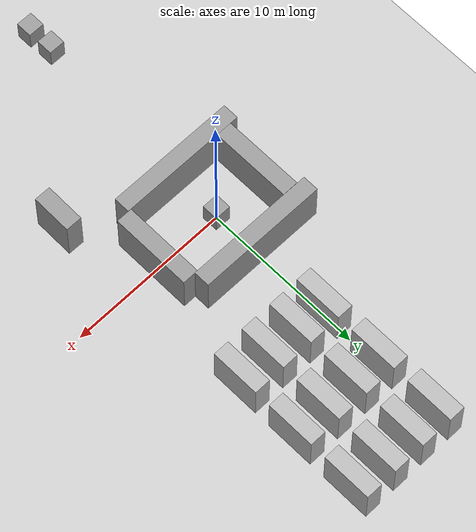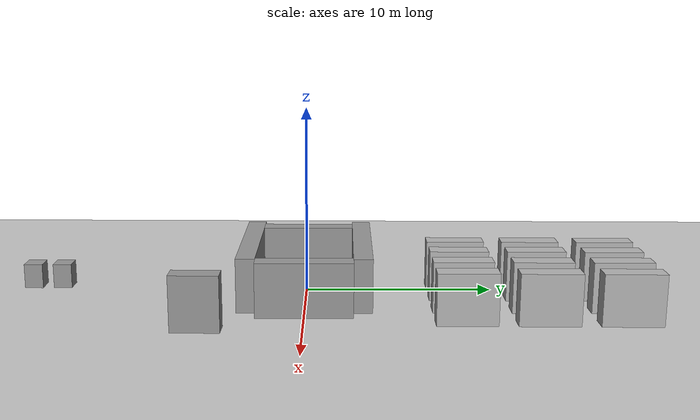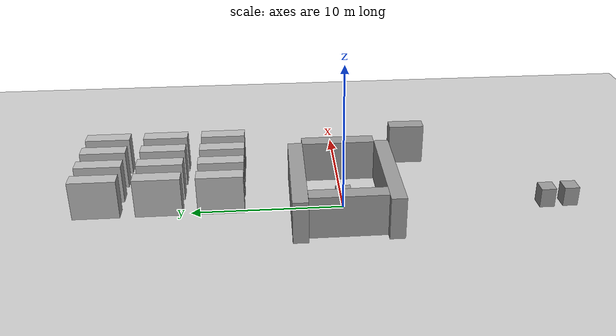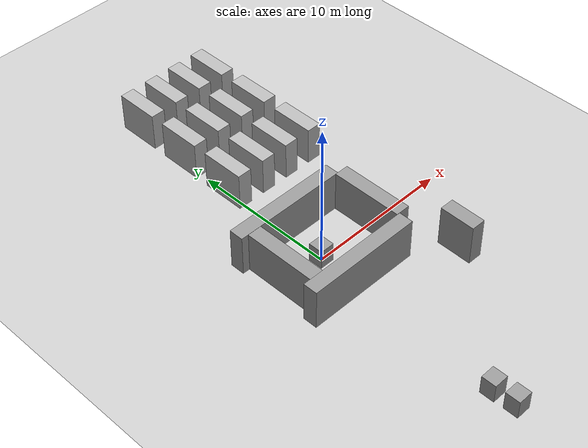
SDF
<sdf version="1.7">
 <world name="default">
  <light name="sun" type="directional">
   <pose>0 0 10 0 -0 0</pose>
   <diffuse>0.8 0.8 0.8 1</diffuse>
   <specular>0.2 0.2 0.2 1</specular>
   <attenuation>
    <range>1000</range>
    <constant>0.9</constant>
    <linear>0.01</linear>
    <quadratic>0.001</quadratic>
   </attenuation>
   <direction>-0.5 0.1 -0.9</direction>
   <spot><inner_angle>0</inner_angle><outer_angle>0</outer_angle><falloff>0</falloff></spot>
  </light>
  <model name="ground_plane">
   <static>1</static>
   <link name="link">
    <collision name="collision">
     <geometry><plane><normal>0 0 1</normal><size>100 100</size></plane></geometry>
     <surface>
      <contact><collide_bitmask>65535</collide_bitmask></contact>
      <friction><ode><mu>100</mu><mu2>50</mu2></ode></friction>
     </surface>
    </collision>
    <visual name="visual">
     <cast_shadows>0</cast_shadows>
     <geometry><plane><normal>0 0 1</normal><size>100 100</size></plane></geometry>
     <material>
      <script><uri>file://media/materials/scripts/gazebo.material</uri><name>Gazebo/Grey</name></script>
     </material>
    </visual>
   </link>
  </model>
  <gravity>0 0 -9.8</gravity>
  <magnetic_field>6e-06 2.3e-05 -4.2e-05</magnetic_field>
  <atmosphere type="adiabatic"/>
  <physics type="ode">
   <max_step_size>0.001</max_step_size>
   <real_time_factor>1</real_time_factor>
   <real_time_update_rate>1000</real_time_update_rate>
  </physics>
  <scene><ambient>0.4 0.4 0.4 1</ambient><background>0.7 0.7 0.7 1</background><shadows>1</shadows></scene>
  <spherical_coordinates>
   <surface_model>EARTH_WGS84</surface_model>
   <latitude_deg>0</latitude_deg>
   <longitude_deg>0</longitude_deg>
   <elevation>0</elevation>
   <heading_deg>0</heading_deg>
  </spherical_coordinates>
  <light name="user_point_light_0" type="point">
   <pose>-0.552343 0.007514 1 0 -0 0</pose>
   <diffuse>0.5 0.5 0.5 1</diffuse>
   <specular>0.1 0.1 0.1 1</specular>
   <attenuation>
    <range>20</range>
    <constant>0.5</constant>
    <linear>0.01</linear>
    <quadratic>0.001</quadratic>
   </attenuation>
   <cast_shadows>0</cast_shadows>
   <direction>0 0 -1</direction>
   <spot><inner_angle>0</inner_angle><outer_angle>0</outer_angle><falloff>0</falloff></spot>
  </light>
  <model name="black_box">
   <link name="link">
    <inertial>
     <mass>1</mass>
     <inertia>
      <ixx>0.166667</ixx>
      <ixy>0</ixy>
      <ixz>0</ixz>
      <iyy>0.166667</iyy>
      <iyz>0</iyz>
      <izz>0.166667</izz>
     </inertia>
    </inertial>
    <visual name="visual">
     <geometry><box><size>1 2.47075 3.03</size></box></geometry>
     <material>
      <script><name>Gazebo/Grey</name><uri>file://media/materials/scripts/gazebo.material</uri></script>
      <shader type="pixel"><normal_map>__default__</normal_map></shader>
      <ambient>0 0 0 1</ambient>
      <diffuse>0 0 0 1</diffuse>
      <specular>0 0 0 1</specular>
      <emissive>0 0 0 1</emissive>
     </material>
    </visual>
    <collision name="collision">
     <geometry><box><size>1 2.47691 2.64879</size></box></geometry>
     <surface>
      <friction>
       <ode><mu>1</mu><mu2>1</mu2><fdir1>0 0 0</fdir1><slip1>0</slip1><slip2>0</slip2></ode>
       <torsional>
        <coefficient>1</coefficient>
        <patch_radius>0</patch_radius>
        <surface_radius>0</surface_radius>
        <use_patch_radius>1</use_patch_radius>
        <ode><slip>0</slip></ode>
       </torsional>
      </friction>
      <bounce><restitution_coefficient>0</restitution_coefficient><threshold>1e+06</threshold></bounce>
      <contact>
       <collide_without_contact>0</collide_without_contact>
       <collide_without_contact_bitmask>1</collide_without_contact_bitmask>
       <collide_bitmask>1</collide_bitmask>
       <ode>
        <soft_cfm>0</soft_cfm>
        <soft_erp>0.2</soft_erp>
        <kp>1e+13</kp>
        <kd>1</kd>
        <max_vel>0.01</max_vel>
        <min_depth>0</min_depth>
       </ode>
       <bullet>
        <split_impulse>1</split_impulse>
        <split_impulse_penetration_threshold>-0.01</split_impulse_penetration_threshold>
        <soft_cfm>0</soft_cfm>
        <soft_erp>0.2</soft_erp>
        <kp>1e+13</kp>
        <kd>1</kd>
       </bullet>
      </contact>
     </surface>
    </collision>
   </link>
   <static>0</static>
   <pose>6.51067 -5.20766 1.32439 0 -0 -0.013022</pose>
  </model>
  <model name="image1">
   <link name="link_1">
    <inertial>
     <mass>1</mass>
     <inertia>
      <ixx>0.166667</ixx>
      <ixy>0</ixy>
      <ixz>0</ixz>
      <iyy>0.166667</iyy>
      <iyz>0</iyz>
      <izz>0.166667</izz>
     </inertia>
    </inertial>
    <visual name="visual">
     <geometry><box><size>1 3.03759 2.64879</size></box></geometry>
     <material>
      <lighting>1</lighting>
      <script><uri>model://image1/materials/scripts/pattern.material</uri><name>image1/pattern</name></script>
     </material>
    </visual>
    <collision name="collision">
     <geometry><box><size>1 3.03 3.03</size></box></geometry>
     <surface>
      <friction>
       <ode><mu>1</mu><mu2>1</mu2><fdir1>0 0 0</fdir1><slip1>0</slip1><slip2>0</slip2></ode>
       <torsional>
        <coefficient>1</coefficient>
        <patch_radius>0</patch_radius>
        <surface_radius>0</surface_radius>
        <use_patch_radius>1</use_patch_radius>
        <ode><slip>0</slip></ode>
       </torsional>
      </friction>
      <bounce><restitution_coefficient>0</restitution_coefficient><threshold>1e+06</threshold></bounce>
      <contact>
       <collide_without_contact>0</collide_without_contact>
       <collide_without_contact_bitmask>1</collide_without_contact_bitmask>
       <collide_bitmask>1</collide_bitmask>
       <ode>
        <soft_cfm>0</soft_cfm>
        <soft_erp>0.2</soft_erp>
        <kp>1e+13</kp>
        <kd>1</kd>
        <max_vel>0.01</max_vel>
        <min_depth>0</min_depth>
       </ode>
       <bullet>
        <split_impulse>1</split_impulse>
        <split_impulse_penetration_threshold>-0.01</split_impulse_penetration_threshold>
        <soft_cfm>0</soft_cfm>
        <soft_erp>0.2</soft_erp>
        <kp>1e+13</kp>
        <kd>1</kd>
       </bullet>
      </contact>
     </surface>
    </collision>
   </link>
   <static>0</static>
   <pose>-6.8e-05 7.99998 1.515 0 -0 5.9e-05</pose>
  </model>
  <model name="image10">
   <link name="link_1">
    <inertial>
     <mass>1</mass>
     <inertia>
      <ixx>0.166667</ixx>
      <ixy>0</ixy>
      <ixz>0</ixz>
      <iyy>0.166667</iyy>
      <iyz>0</iyz>
      <izz>0.166667</izz>
     </inertia>
    </inertial>
    <visual name="visual">
     <geometry><box><size>1 3.03759 2.64879</size></box></geometry>
     <material>
      <lighting>1</lighting>
      <script><uri>model://image10/materials/scripts/pattern.material</uri><name>image10/pattern</name></script>
     </material>
    </visual>
    <collision name="collision">
     <geometry><box><size>1 3.03 3.03</size></box></geometry>
     <surface>
      <friction>
       <ode><mu>1</mu><mu2>1</mu2><fdir1>0 0 0</fdir1><slip1>0</slip1><slip2>0</slip2></ode>
       <torsional>
        <coefficient>1</coefficient>
        <patch_radius>0</patch_radius>
        <surface_radius>0</surface_radius>
        <use_patch_radius>1</use_patch_radius>
        <ode><slip>0</slip></ode>
       </torsional>
      </friction>
      <bounce><restitution_coefficient>0</restitution_coefficient><threshold>1e+06</threshold></bounce>
      <contact>
       <collide_without_contact>0</collide_without_contact>
       <collide_without_contact_bitmask>1</collide_without_contact_bitmask>
       <collide_bitmask>1</collide_bitmask>
       <ode>
        <soft_cfm>0</soft_cfm>
        <soft_erp>0.2</soft_erp>
        <kp>1e+13</kp>
        <kd>1</kd>
        <max_vel>0.01</max_vel>
        <min_depth>0</min_depth>
       </ode>
       <bullet>
        <split_impulse>1</split_impulse>
        <split_impulse_penetration_threshold>-0.01</split_impulse_penetration_threshold>
        <soft_cfm>0</soft_cfm>
        <soft_erp>0.2</soft_erp>
        <kp>1e+13</kp>
        <kd>1</kd>
       </bullet>
      </contact>
     </surface>
    </collision>
   </link>
   <static>0</static>
   <pose>1.99993 16 1.515 0 -0 5.9e-05</pose>
  </model>
  <model name="image11">
   <link name="link_1">
    <inertial>
     <mass>1</mass>
     <inertia>
      <ixx>0.166667</ixx>
      <ixy>0</ixy>
      <ixz>0</ixz>
      <iyy>0.166667</iyy>
      <iyz>0</iyz>
      <izz>0.166667</izz>
     </inertia>
    </inertial>
    <visual name="visual">
     <geometry><box><size>1 3.03759 2.64879</size></box></geometry>
     <material>
      <lighting>1</lighting>
      <script><uri>model://image11/materials/scripts/pattern.material</uri><name>image11/pattern</name></script>
     </material>
    </visual>
    <collision name="collision">
     <geometry><box><size>1 3.03 3.03</size></box></geometry>
     <surface>
      <friction>
       <ode><mu>1</mu><mu2>1</mu2><fdir1>0 0 0</fdir1><slip1>0</slip1><slip2>0</slip2></ode>
       <torsional>
        <coefficient>1</coefficient>
        <patch_radius>0</patch_radius>
        <surface_radius>0</surface_radius>
        <use_patch_radius>1</use_patch_radius>
        <ode><slip>0</slip></ode>
       </torsional>
      </friction>
      <bounce><restitution_coefficient>0</restitution_coefficient><threshold>1e+06</threshold></bounce>
      <contact>
       <collide_without_contact>0</collide_without_contact>
       <collide_without_contact_bitmask>1</collide_without_contact_bitmask>
       <collide_bitmask>1</collide_bitmask>
       <ode>
        <soft_cfm>0</soft_cfm>
        <soft_erp>0.2</soft_erp>
        <kp>1e+13</kp>
        <kd>1</kd>
        <max_vel>0.01</max_vel>
        <min_depth>0</min_depth>
       </ode>
       <bullet>
        <split_impulse>1</split_impulse>
        <split_impulse_penetration_threshold>-0.01</split_impulse_penetration_threshold>
        <soft_cfm>0</soft_cfm>
        <soft_erp>0.2</soft_erp>
        <kp>1e+13</kp>
        <kd>1</kd>
       </bullet>
      </contact>
     </surface>
    </collision>
   </link>
   <static>0</static>
   <pose>3.99993 16 1.515 0 -0 5.9e-05</pose>
  </model>
  <model name="image12">
   <link name="link_1">
    <inertial>
     <mass>1</mass>
     <inertia>
      <ixx>0.166667</ixx>
      <ixy>0</ixy>
      <ixz>0</ixz>
      <iyy>0.166667</iyy>
      <iyz>0</iyz>
      <izz>0.166667</izz>
     </inertia>
    </inertial>
    <visual name="visual">
     <geometry><box><size>1 3.03759 2.64879</size></box></geometry>
     <material>
      <lighting>1</lighting>
      <script><uri>model://image12/materials/scripts/pattern.material</uri><name>image12/pattern</name></script>
     </material>
    </visual>
    <collision name="collision">
     <geometry><box><size>1 3.03 3.03</size></box></geometry>
     <surface>
      <friction>
       <ode><mu>1</mu><mu2>1</mu2><fdir1>0 0 0</fdir1><slip1>0</slip1><slip2>0</slip2></ode>
       <torsional>
        <coefficient>1</coefficient>
        <patch_radius>0</patch_radius>
        <surface_radius>0</surface_radius>
        <use_patch_radius>1</use_patch_radius>
        <ode><slip>0</slip></ode>
       </torsional>
      </friction>
      <bounce><restitution_coefficient>0</restitution_coefficient><threshold>1e+06</threshold></bounce>
      <contact>
       <collide_without_contact>0</collide_without_contact>
       <collide_without_contact_bitmask>1</collide_without_contact_bitmask>
       <collide_bitmask>1</collide_bitmask>
       <ode>
        <soft_cfm>0</soft_cfm>
        <soft_erp>0.2</soft_erp>
        <kp>1e+13</kp>
        <kd>1</kd>
        <max_vel>0.01</max_vel>
        <min_depth>0</min_depth>
       </ode>
       <bullet>
        <split_impulse>1</split_impulse>
        <split_impulse_penetration_threshold>-0.01</split_impulse_penetration_threshold>
        <soft_cfm>0</soft_cfm>
        <soft_erp>0.2</soft_erp>
        <kp>1e+13</kp>
        <kd>1</kd>
       </bullet>
      </contact>
     </surface>
    </collision>
   </link>
   <static>0</static>
   <pose>5.99993 16 1.515 0 -0 5.9e-05</pose>
  </model>
  <model name="image9">
   <link name="link_1">
    <inertial>
     <mass>1</mass>
     <inertia>
      <ixx>0.166667</ixx>
      <ixy>0</ixy>
      <ixz>0</ixz>
      <iyy>0.166667</iyy>
      <iyz>0</iyz>
      <izz>0.166667</izz>
     </inertia>
    </inertial>
    <visual name="visual">
     <geometry><box><size>1 3.03759 2.64879</size></box></geometry>
     <material>
      <lighting>1</lighting>
      <script><uri>model://image9/materials/scripts/pattern.material</uri><name>image9/pattern</name></script>
     </material>
    </visual>
    <collision name="collision">
     <geometry><box><size>1 3.03 3.03</size></box></geometry>
     <surface>
      <friction>
       <ode><mu>1</mu><mu2>1</mu2><fdir1>0 0 0</fdir1><slip1>0</slip1><slip2>0</slip2></ode>
       <torsional>
        <coefficient>1</coefficient>
        <patch_radius>0</patch_radius>
        <surface_radius>0</surface_radius>
        <use_patch_radius>1</use_patch_radius>
        <ode><slip>0</slip></ode>
       </torsional>
      </friction>
      <bounce><restitution_coefficient>0</restitution_coefficient><threshold>1e+06</threshold></bounce>
      <contact>
       <collide_without_contact>0</collide_without_contact>
       <collide_without_contact_bitmask>1</collide_without_contact_bitmask>
       <collide_bitmask>1</collide_bitmask>
       <ode>
        <soft_cfm>0</soft_cfm>
        <soft_erp>0.2</soft_erp>
        <kp>1e+13</kp>
        <kd>1</kd>
        <max_vel>0.01</max_vel>
        <min_depth>0</min_depth>
       </ode>
       <bullet>
        <split_impulse>1</split_impulse>
        <split_impulse_penetration_threshold>-0.01</split_impulse_penetration_threshold>
        <soft_cfm>0</soft_cfm>
        <soft_erp>0.2</soft_erp>
        <kp>1e+13</kp>
        <kd>1</kd>
       </bullet>
      </contact>
     </surface>
    </collision>
   </link>
   <static>0</static>
   <pose>-6.8e-05 16 1.515 0 -0 5.9e-05</pose>
  </model>
  <model name="image2">
   <link name="link_1">
    <inertial>
     <mass>1</mass>
     <inertia>
      <ixx>0.166667</ixx>
      <ixy>0</ixy>
      <ixz>0</ixz>
      <iyy>0.166667</iyy>
      <iyz>0</iyz>
      <izz>0.166667</izz>
     </inertia>
    </inertial>
    <visual name="visual">
     <geometry><box><size>1 3.03759 2.64879</size></box></geometry>
     <material>
      <lighting>1</lighting>
      <script><uri>model://image2/materials/scripts/pattern.material</uri><name>image2/pattern</name></script>
     </material>
    </visual>
    <collision name="collision">
     <geometry><box><size>1 3.03 3.03</size></box></geometry>
     <surface>
      <friction>
       <ode><mu>1</mu><mu2>1</mu2><fdir1>0 0 0</fdir1><slip1>0</slip1><slip2>0</slip2></ode>
       <torsional>
        <coefficient>1</coefficient>
        <patch_radius>0</patch_radius>
        <surface_radius>0</surface_radius>
        <use_patch_radius>1</use_patch_radius>
        <ode><slip>0</slip></ode>
       </torsional>
      </friction>
      <bounce><restitution_coefficient>0</restitution_coefficient><threshold>1e+06</threshold></bounce>
      <contact>
       <collide_without_contact>0</collide_without_contact>
       <collide_without_contact_bitmask>1</collide_without_contact_bitmask>
       <collide_bitmask>1</collide_bitmask>
       <ode>
        <soft_cfm>0</soft_cfm>
        <soft_erp>0.2</soft_erp>
        <kp>1e+13</kp>
        <kd>1</kd>
        <max_vel>0.01</max_vel>
        <min_depth>0</min_depth>
       </ode>
       <bullet>
        <split_impulse>1</split_impulse>
        <split_impulse_penetration_threshold>-0.01</split_impulse_penetration_threshold>
        <soft_cfm>0</soft_cfm>
        <soft_erp>0.2</soft_erp>
        <kp>1e+13</kp>
        <kd>1</kd>
       </bullet>
      </contact>
     </surface>
    </collision>
   </link>
   <static>0</static>
   <pose>1.99993 7.99998 1.515 0 -0 5.9e-05</pose>
  </model>
  <model name="image3">
   <link name="link_1">
    <inertial>
     <mass>1</mass>
     <inertia>
      <ixx>0.166667</ixx>
      <ixy>0</ixy>
      <ixz>0</ixz>
      <iyy>0.166667</iyy>
      <iyz>0</iyz>
      <izz>0.166667</izz>
     </inertia>
    </inertial>
    <visual name="visual">
     <geometry><box><size>1 3.03759 2.64879</size></box></geometry>
     <material>
      <lighting>1</lighting>
      <script><uri>model://image3/materials/scripts/pattern.material</uri><name>image3/pattern</name></script>
     </material>
    </visual>
    <collision name="collision">
     <geometry><box><size>1 3.03 3.03</size></box></geometry>
     <surface>
      <friction>
       <ode><mu>1</mu><mu2>1</mu2><fdir1>0 0 0</fdir1><slip1>0</slip1><slip2>0</slip2></ode>
       <torsional>
        <coefficient>1</coefficient>
        <patch_radius>0</patch_radius>
        <surface_radius>0</surface_radius>
        <use_patch_radius>1</use_patch_radius>
        <ode><slip>0</slip></ode>
       </torsional>
      </friction>
      <bounce><restitution_coefficient>0</restitution_coefficient><threshold>1e+06</threshold></bounce>
      <contact>
       <collide_without_contact>0</collide_without_contact>
       <collide_without_contact_bitmask>1</collide_without_contact_bitmask>
       <collide_bitmask>1</collide_bitmask>
       <ode>
        <soft_cfm>0</soft_cfm>
        <soft_erp>0.2</soft_erp>
        <kp>1e+13</kp>
        <kd>1</kd>
        <max_vel>0.01</max_vel>
        <min_depth>0</min_depth>
       </ode>
       <bullet>
        <split_impulse>1</split_impulse>
        <split_impulse_penetration_threshold>-0.01</split_impulse_penetration_threshold>
        <soft_cfm>0</soft_cfm>
        <soft_erp>0.2</soft_erp>
        <kp>1e+13</kp>
        <kd>1</kd>
       </bullet>
      </contact>
     </surface>
    </collision>
   </link>
   <static>0</static>
   <pose>3.99993 7.99998 1.515 0 -0 5.9e-05</pose>
  </model>
  <model name="image4">
   <link name="link_1">
    <inertial>
     <mass>1</mass>
     <inertia>
      <ixx>0.166667</ixx>
      <ixy>0</ixy>
      <ixz>0</ixz>
      <iyy>0.166667</iyy>
      <iyz>0</iyz>
      <izz>0.166667</izz>
     </inertia>
    </inertial>
    <visual name="visual">
     <geometry><box><size>1 3.03759 2.64879</size></box></geometry>
     <material>
      <lighting>1</lighting>
      <script><uri>model://image4/materials/scripts/pattern.material</uri><name>image4/pattern</name></script>
     </material>
    </visual>
    <collision name="collision">
     <geometry><box><size>1 3.03 3.03</size></box></geometry>
     <surface>
      <friction>
       <ode><mu>1</mu><mu2>1</mu2><fdir1>0 0 0</fdir1><slip1>0</slip1><slip2>0</slip2></ode>
       <torsional>
        <coefficient>1</coefficient>
        <patch_radius>0</patch_radius>
        <surface_radius>0</surface_radius>
        <use_patch_radius>1</use_patch_radius>
        <ode><slip>0</slip></ode>
       </torsional>
      </friction>
      <bounce><restitution_coefficient>0</restitution_coefficient><threshold>1e+06</threshold></bounce>
      <contact>
       <collide_without_contact>0</collide_without_contact>
       <collide_without_contact_bitmask>1</collide_without_contact_bitmask>
       <collide_bitmask>1</collide_bitmask>
       <ode>
        <soft_cfm>0</soft_cfm>
        <soft_erp>0.2</soft_erp>
        <kp>1e+13</kp>
        <kd>1</kd>
        <max_vel>0.01</max_vel>
        <min_depth>0</min_depth>
       </ode>
       <bullet>
        <split_impulse>1</split_impulse>
        <split_impulse_penetration_threshold>-0.01</split_impulse_penetration_threshold>
        <soft_cfm>0</soft_cfm>
        <soft_erp>0.2</soft_erp>
        <kp>1e+13</kp>
        <kd>1</kd>
       </bullet>
      </contact>
     </surface>
    </collision>
   </link>
   <static>0</static>
   <pose>5.99993 7.99998 1.515 0 -0 5.9e-05</pose>
  </model>
  <model name="image5">
   <link name="link_1">
    <inertial>
     <mass>1</mass>
     <inertia>
      <ixx>0.166667</ixx>
      <ixy>0</ixy>
      <ixz>0</ixz>
      <iyy>0.166667</iyy>
      <iyz>0</iyz>
      <izz>0.166667</izz>
     </inertia>
    </inertial>
    <visual name="visual">
     <geometry><box><size>1 3.03759 2.64879</size></box></geometry>
     <material>
      <lighting>1</lighting>
      <script><uri>model://image5/materials/scripts/pattern.material</uri><name>image5/pattern</name></script>
     </material>
    </visual>
    <collision name="collision">
     <geometry><box><size>1 3.03 3.03</size></box></geometry>
     <surface>
      <friction>
       <ode><mu>1</mu><mu2>1</mu2><fdir1>0 0 0</fdir1><slip1>0</slip1><slip2>0</slip2></ode>
       <torsional>
        <coefficient>1</coefficient>
        <patch_radius>0</patch_radius>
        <surface_radius>0</surface_radius>
        <use_patch_radius>1</use_patch_radius>
        <ode><slip>0</slip></ode>
       </torsional>
      </friction>
      <bounce><restitution_coefficient>0</restitution_coefficient><threshold>1e+06</threshold></bounce>
      <contact>
       <collide_without_contact>0</collide_without_contact>
       <collide_without_contact_bitmask>1</collide_without_contact_bitmask>
       <collide_bitmask>1</collide_bitmask>
       <ode>
        <soft_cfm>0</soft_cfm>
        <soft_erp>0.2</soft_erp>
        <kp>1e+13</kp>
        <kd>1</kd>
        <max_vel>0.01</max_vel>
        <min_depth>0</min_depth>
       </ode>
       <bullet>
        <split_impulse>1</split_impulse>
        <split_impulse_penetration_threshold>-0.01</split_impulse_penetration_threshold>
        <soft_cfm>0</soft_cfm>
        <soft_erp>0.2</soft_erp>
        <kp>1e+13</kp>
        <kd>1</kd>
       </bullet>
      </contact>
     </surface>
    </collision>
   </link>
   <static>0</static>
   <pose>-6.8e-05 12 1.515 0 -0 5.9e-05</pose>
  </model>
  <model name="image6">
   <link name="link_1">
    <inertial>
     <mass>1</mass>
     <inertia>
      <ixx>0.166667</ixx>
      <ixy>0</ixy>
      <ixz>0</ixz>
      <iyy>0.166667</iyy>
      <iyz>0</iyz>
      <izz>0.166667</izz>
     </inertia>
    </inertial>
    <visual name="visual">
     <geometry><box><size>1 3.03759 2.64879</size></box></geometry>
     <material>
      <lighting>1</lighting>
      <script><uri>model://image6/materials/scripts/pattern.material</uri><name>image6/pattern</name></script>
     </material>
    </visual>
    <collision name="collision">
     <geometry><box><size>1 3.03 3.03</size></box></geometry>
     <surface>
      <friction>
       <ode><mu>1</mu><mu2>1</mu2><fdir1>0 0 0</fdir1><slip1>0</slip1><slip2>0</slip2></ode>
       <torsional>
        <coefficient>1</coefficient>
        <patch_radius>0</patch_radius>
        <surface_radius>0</surface_radius>
        <use_patch_radius>1</use_patch_radius>
        <ode><slip>0</slip></ode>
       </torsional>
      </friction>
      <bounce><restitution_coefficient>0</restitution_coefficient><threshold>1e+06</threshold></bounce>
      <contact>
       <collide_without_contact>0</collide_without_contact>
       <collide_without_contact_bitmask>1</collide_without_contact_bitmask>
       <collide_bitmask>1</collide_bitmask>
       <ode>
        <soft_cfm>0</soft_cfm>
        <soft_erp>0.2</soft_erp>
        <kp>1e+13</kp>
        <kd>1</kd>
        <max_vel>0.01</max_vel>
        <min_depth>0</min_depth>
       </ode>
       <bullet>
        <split_impulse>1</split_impulse>
        <split_impulse_penetration_threshold>-0.01</split_impulse_penetration_threshold>
        <soft_cfm>0</soft_cfm>
        <soft_erp>0.2</soft_erp>
        <kp>1e+13</kp>
        <kd>1</kd>
       </bullet>
      </contact>
     </surface>
    </collision>
   </link>
   <static>0</static>
   <pose>1.99993 12 1.515 0 -0 5.9e-05</pose>
  </model>
  <model name="image7">
   <link name="link_1">
    <inertial>
     <mass>1</mass>
     <inertia>
      <ixx>0.166667</ixx>
      <ixy>0</ixy>
      <ixz>0</ixz>
      <iyy>0.166667</iyy>
      <iyz>0</iyz>
      <izz>0.166667</izz>
     </inertia>
    </inertial>
    <visual name="visual">
     <geometry><box><size>1 3.03759 2.64879</size></box></geometry>
     <material>
      <lighting>1</lighting>
      <script><uri>model://image7/materials/scripts/pattern.material</uri><name>image7/pattern</name></script>
     </material>
    </visual>
    <collision name="collision">
     <geometry><box><size>1 3.03 3.03</size></box></geometry>
     <surface>
      <friction>
       <ode><mu>1</mu><mu2>1</mu2><fdir1>0 0 0</fdir1><slip1>0</slip1><slip2>0</slip2></ode>
       <torsional>
        <coefficient>1</coefficient>
        <patch_radius>0</patch_radius>
        <surface_radius>0</surface_radius>
        <use_patch_radius>1</use_patch_radius>
        <ode><slip>0</slip></ode>
       </torsional>
      </friction>
      <bounce><restitution_coefficient>0</restitution_coefficient><threshold>1e+06</threshold></bounce>
      <contact>
       <collide_without_contact>0</collide_without_contact>
       <collide_without_contact_bitmask>1</collide_without_contact_bitmask>
       <collide_bitmask>1</collide_bitmask>
       <ode>
        <soft_cfm>0</soft_cfm>
        <soft_erp>0.2</soft_erp>
        <kp>1e+13</kp>
        <kd>1</kd>
        <max_vel>0.01</max_vel>
        <min_depth>0</min_depth>
       </ode>
       <bullet>
        <split_impulse>1</split_impulse>
        <split_impulse_penetration_threshold>-0.01</split_impulse_penetration_threshold>
        <soft_cfm>0</soft_cfm>
        <soft_erp>0.2</soft_erp>
        <kp>1e+13</kp>
        <kd>1</kd>
       </bullet>
      </contact>
     </surface>
    </collision>
   </link>
   <static>0</static>
   <pose>3.99993 12 1.515 0 -0 5.9e-05</pose>
  </model>
  <model name="image8">
   <link name="link_1">
    <inertial>
     <mass>1</mass>
     <inertia>
      <ixx>0.166667</ixx>
      <ixy>0</ixy>
      <ixz>0</ixz>
      <iyy>0.166667</iyy>
      <iyz>0</iyz>
      <izz>0.166667</izz>
     </inertia>
    </inertial>
    <visual name="visual">
     <geometry><box><size>1 3.03759 2.64879</size></box></geometry>
     <material>
      <lighting>1</lighting>
      <script><uri>model://image8/materials/scripts/pattern.material</uri><name>image8/pattern</name></script>
     </material>
    </visual>
    <collision name="collision">
     <geometry><box><size>1 3.03 3.03</size></box></geometry>
     <surface>
      <friction>
       <ode><mu>1</mu><mu2>1</mu2><fdir1>0 0 0</fdir1><slip1>0</slip1><slip2>0</slip2></ode>
       <torsional>
        <coefficient>1</coefficient>
        <patch_radius>0</patch_radius>
        <surface_radius>0</surface_radius>
        <use_patch_radius>1</use_patch_radius>
        <ode><slip>0</slip></ode>
       </torsional>
      </friction>
      <bounce><restitution_coefficient>0</restitution_coefficient><threshold>1e+06</threshold></bounce>
      <contact>
       <collide_without_contact>0</collide_without_contact>
       <collide_without_contact_bitmask>1</collide_without_contact_bitmask>
       <collide_bitmask>1</collide_bitmask>
       <ode>
        <soft_cfm>0</soft_cfm>
        <soft_erp>0.2</soft_erp>
        <kp>1e+13</kp>
        <kd>1</kd>
        <max_vel>0.01</max_vel>
        <min_depth>0</min_depth>
       </ode>
       <bullet>
        <split_impulse>1</split_impulse>
        <split_impulse_penetration_threshold>-0.01</split_impulse_penetration_threshold>
        <soft_cfm>0</soft_cfm>
        <soft_erp>0.2</soft_erp>
        <kp>1e+13</kp>
        <kd>1</kd>
       </bullet>
      </contact>
     </surface>
    </collision>
   </link>
   <static>0</static>
   <pose>5.99993 12 1.515 0 -0 5.9e-05</pose>
  </model>
  <model name="white_backWall">
   <link name="link">
    <inertial>
     <mass>1</mass>
     <inertia>
      <ixx>0.166667</ixx>
      <ixy>0</ixy>
      <ixz>0</ixz>
      <iyy>0.166667</iyy>
      <iyz>0</iyz>
      <izz>0.166667</izz>
     </inertia>
    </inertial>
    <visual name="visual">
     <geometry><box><size>1 5 3.03</size></box></geometry>
     <material>
      <script><name>Gazebo/Grey</name><uri>file://media/materials/scripts/gazebo.material</uri></script>
      <shader type="pixel"><normal_map>__default__</normal_map></shader>
      <ambient>1 1 1 1</ambient>
      <diffuse>1 1 1 1</diffuse>
      <specular>1 1 1 1</specular>
      <emissive>0 0 0 1</emissive>
     </material>
    </visual>
    <collision name="collision">
     <geometry><box><size>1 3.25136 2.64879</size></box></geometry>
     <surface>
      <friction>
       <ode><mu>1</mu><mu2>1</mu2><fdir1>0 0 0</fdir1><slip1>0</slip1><slip2>0</slip2></ode>
       <torsional>
        <coefficient>1</coefficient>
        <patch_radius>0</patch_radius>
        <surface_radius>0</surface_radius>
        <use_patch_radius>1</use_patch_radius>
        <ode><slip>0</slip></ode>
       </torsional>
      </friction>
      <bounce><restitution_coefficient>0</restitution_coefficient><threshold>1e+06</threshold></bounce>
      <contact>
       <collide_without_contact>0</collide_without_contact>
       <collide_without_contact_bitmask>1</collide_without_contact_bitmask>
       <collide_bitmask>1</collide_bitmask>
       <ode>
        <soft_cfm>0</soft_cfm>
        <soft_erp>0.2</soft_erp>
        <kp>1e+13</kp>
        <kd>1</kd>
        <max_vel>0.01</max_vel>
        <min_depth>0</min_depth>
       </ode>
       <bullet>
        <split_impulse>1</split_impulse>
        <split_impulse_penetration_threshold>-0.01</split_impulse_penetration_threshold>
        <soft_cfm>0</soft_cfm>
        <soft_erp>0.2</soft_erp>
        <kp>1e+13</kp>
        <kd>1</kd>
       </bullet>
      </contact>
     </surface>
    </collision>
   </link>
   <static>0</static>
   <pose>-2.99798 0.002074 1.32438 -8e-06 -0 0.001499</pose>
  </model>
  <model name="white_wall_clone">
   <link name="link">
    <inertial>
     <mass>1</mass>
     <inertia>
      <ixx>0.166667</ixx>
      <ixy>0</ixy>
      <ixz>0</ixz>
      <iyy>0.166667</iyy>
      <iyz>0</iyz>
      <izz>0.166667</izz>
     </inertia>
    </inertial>
    <visual name="visual">
     <geometry><box><size>1 8 3.03</size></box></geometry>
     <material>
      <script><name>Gazebo/Grey</name><uri>file://media/materials/scripts/gazebo.material</uri></script>
      <shader type="pixel"><normal_map>__default__</normal_map></shader>
      <ambient>1 1 1 1</ambient>
      <diffuse>1 1 1 1</diffuse>
      <specular>1 1 1 1</specular>
      <emissive>0 0 0 1</emissive>
     </material>
    </visual>
    <collision name="collision">
     <geometry><box><size>1 3.25136 2.64879</size></box></geometry>
     <surface>
      <friction>
       <ode><mu>1</mu><mu2>1</mu2><fdir1>0 0 0</fdir1><slip1>0</slip1><slip2>0</slip2></ode>
       <torsional>
        <coefficient>1</coefficient>
        <patch_radius>0</patch_radius>
        <surface_radius>0</surface_radius>
        <use_patch_radius>1</use_patch_radius>
        <ode><slip>0</slip></ode>
       </torsional>
      </friction>
      <bounce><restitution_coefficient>0</restitution_coefficient><threshold>1e+06</threshold></bounce>
      <contact>
       <collide_without_contact>0</collide_without_contact>
       <collide_without_contact_bitmask>1</collide_without_contact_bitmask>
       <collide_bitmask>1</collide_bitmask>
       <ode>
        <soft_cfm>0</soft_cfm>
        <soft_erp>0.2</soft_erp>
        <kp>1e+13</kp>
        <kd>1</kd>
        <max_vel>0.01</max_vel>
        <min_depth>0</min_depth>
       </ode>
       <bullet>
        <split_impulse>1</split_impulse>
        <split_impulse_penetration_threshold>-0.01</split_impulse_penetration_threshold>
        <soft_cfm>0</soft_cfm>
        <soft_erp>0.2</soft_erp>
        <kp>1e+13</kp>
        <kd>1</kd>
       </bullet>
      </contact>
     </surface>
    </collision>
   </link>
   <static>1</static>
   <pose>0 -3 1.3244 1e-06 -1e-06 -1.57417</pose>
  </model>
  <model name="white_wall">
   <link name="link">
    <inertial>
     <mass>1</mass>
     <inertia>
      <ixx>0.166667</ixx>
      <ixy>0</ixy>
      <ixz>0</ixz>
      <iyy>0.166667</iyy>
      <iyz>0</iyz>
      <izz>0.166667</izz>
     </inertia>
    </inertial>
    <visual name="visual">
     <geometry><box><size>1 8 3.03</size></box></geometry>
     <material>
      <script><name>Gazebo/Grey</name><uri>file://media/materials/scripts/gazebo.material</uri></script>
      <shader type="pixel"><normal_map>__default__</normal_map></shader>
      <ambient>1 1 1 1</ambient>
      <diffuse>1 1 1 1</diffuse>
      <specular>1 1 1 1</specular>
      <emissive>0 0 0 1</emissive>
     </material>
    </visual>
    <collision name="collision">
     <geometry><box><size>1 3.25136 2.64879</size></box></geometry>
     <surface>
      <friction>
       <ode><mu>1</mu><mu2>1</mu2><fdir1>0 0 0</fdir1><slip1>0</slip1><slip2>0</slip2></ode>
       <torsional>
        <coefficient>1</coefficient>
        <patch_radius>0</patch_radius>
        <surface_radius>0</surface_radius>
        <use_patch_radius>1</use_patch_radius>
        <ode><slip>0</slip></ode>
       </torsional>
      </friction>
      <bounce><restitution_coefficient>0</restitution_coefficient><threshold>1e+06</threshold></bounce>
      <contact>
       <collide_without_contact>0</collide_without_contact>
       <collide_without_contact_bitmask>1</collide_without_contact_bitmask>
       <collide_bitmask>1</collide_bitmask>
       <ode>
        <soft_cfm>0</soft_cfm>
        <soft_erp>0.2</soft_erp>
        <kp>1e+13</kp>
        <kd>1</kd>
        <max_vel>0.01</max_vel>
        <min_depth>0</min_depth>
       </ode>
       <bullet>
        <split_impulse>1</split_impulse>
        <split_impulse_penetration_threshold>-0.01</split_impulse_penetration_threshold>
        <soft_cfm>0</soft_cfm>
        <soft_erp>0.2</soft_erp>
        <kp>1e+13</kp>
        <kd>1</kd>
       </bullet>
      </contact>
     </surface>
    </collision>
   </link>
   <static>1</static>
   <pose>0 3 1.3244 1e-06 -1e-06 -1.57417</pose>
  </model>
  <model name="white_backWall_clone">
   <link name="link">
    <inertial>
     <mass>1</mass>
     <inertia>
      <ixx>0.166667</ixx>
      <ixy>0</ixy>
      <ixz>0</ixz>
      <iyy>0.166667</iyy>
      <iyz>0</iyz>
      <izz>0.166667</izz>
     </inertia>
    </inertial>
    <visual name="visual">
     <geometry><box><size>1 5 3.03</size></box></geometry>
     <material>
      <script><name>Gazebo/Grey</name><uri>file://media/materials/scripts/gazebo.material</uri></script>
      <shader type="pixel"><normal_map>__default__</normal_map></shader>
      <ambient>1 1 1 1</ambient>
      <diffuse>1 1 1 1</diffuse>
      <specular>1 1 1 1</specular>
      <emissive>0 0 0 1</emissive>
     </material>
    </visual>
    <collision name="collision">
     <geometry><box><size>1 3.25136 2.64879</size></box></geometry>
     <surface>
      <friction>
       <ode><mu>1</mu><mu2>1</mu2><fdir1>0 0 0</fdir1><slip1>0</slip1><slip2>0</slip2></ode>
       <torsional>
        <coefficient>1</coefficient>
        <patch_radius>0</patch_radius>
        <surface_radius>0</surface_radius>
        <use_patch_radius>1</use_patch_radius>
        <ode><slip>0</slip></ode>
       </torsional>
      </friction>
      <bounce><restitution_coefficient>0</restitution_coefficient><threshold>1e+06</threshold></bounce>
      <contact>
       <collide_without_contact>0</collide_without_contact>
       <collide_without_contact_bitmask>1</collide_without_contact_bitmask>
       <collide_bitmask>1</collide_bitmask>
       <ode>
        <soft_cfm>0</soft_cfm>
        <soft_erp>0.2</soft_erp>
        <kp>1e+13</kp>
        <kd>1</kd>
        <max_vel>0.01</max_vel>
        <min_depth>0</min_depth>
       </ode>
       <bullet>
        <split_impulse>1</split_impulse>
        <split_impulse_penetration_threshold>-0.01</split_impulse_penetration_threshold>
        <soft_cfm>0</soft_cfm>
        <soft_erp>0.2</soft_erp>
        <kp>1e+13</kp>
        <kd>1</kd>
       </bullet>
      </contact>
     </surface>
    </collision>
   </link>
   <static>1</static>
   <pose>4.30094 0 1.32438 8e-06 -0 0</pose>
  </model>
  <model name="Podium">
   <link name="link_0">
    <inertial>
     <mass>1.31</mass>
     <inertia>
      <ixx>0.296505</ixx>
      <ixy>0</ixy>
      <ixz>0</ixz>
      <iyy>0.296505</iyy>
      <iyz>0</iyz>
      <izz>0.218333</izz>
     </inertia>
    </inertial>
    <pose>0.565787 -6.87153 0.353677 0 -0 0</pose>
    <visual name="visual">
     <geometry><box><size>1 1 1.37387</size></box></geometry>
     <material>
      <lighting>1</lighting>
      <script><uri>file://media/materials/scripts/gazebo.material</uri><name>Gazebo/Grey</name></script>
      <shader type="pixel"><normal_map>__default__</normal_map></shader>
      <ambient>0.3 0.3 0.3 1</ambient>
      <diffuse>0.7 0.7 0.7 1</diffuse>
      <specular>0.01 0.01 0.01 1</specular>
      <emissive>0 0 0 1</emissive>
     </material>
    </visual>
    <collision name="collision">
     <geometry><box><size>1 1 1.3569</size></box></geometry>
     <surface>
      <friction>
       <ode><mu>1</mu><mu2>1</mu2><fdir1>0 0 0</fdir1><slip1>0</slip1><slip2>0</slip2></ode>
       <torsional>
        <coefficient>1</coefficient>
        <patch_radius>0</patch_radius>
        <surface_radius>0</surface_radius>
        <use_patch_radius>1</use_patch_radius>
        <ode><slip>0</slip></ode>
       </torsional>
      </friction>
      <bounce><restitution_coefficient>0</restitution_coefficient><threshold>1e+06</threshold></bounce>
      <contact>
       <collide_without_contact>0</collide_without_contact>
       <collide_without_contact_bitmask>1</collide_without_contact_bitmask>
       <collide_bitmask>1</collide_bitmask>
       <ode>
        <soft_cfm>0</soft_cfm>
        <soft_erp>0.2</soft_erp>
        <kp>1e+13</kp>
        <kd>1</kd>
        <max_vel>0.01</max_vel>
        <min_depth>0</min_depth>
       </ode>
       <bullet>
        <split_impulse>1</split_impulse>
        <split_impulse_penetration_threshold>-0.01</split_impulse_penetration_threshold>
        <soft_cfm>0</soft_cfm>
        <soft_erp>0.2</soft_erp>
        <kp>1e+13</kp>
        <kd>1</kd>
       </bullet>
      </contact>
     </surface>
    </collision>
   </link>
   <static>0</static>
   <pose>-0.565848 6.87152 0.324773 0 -0 9e-06</pose>
  </model>
  <model name="Podium_0">
   <link name="link_0">
    <inertial>
     <mass>1.31</mass>
     <inertia>
      <ixx>0.296505</ixx>
      <ixy>0</ixy>
      <ixz>0</ixz>
      <iyy>0.296505</iyy>
      <iyz>0</iyz>
      <izz>0.218333</izz>
     </inertia>
    </inertial>
    <pose>0.565787 -6.87153 0.353677 0 -0 0</pose>
    <visual name="visual">
     <geometry><box><size>1 1 1.32637</size></box></geometry>
     <material>
      <lighting>1</lighting>
      <script><uri>file://media/materials/scripts/gazebo.material</uri><name>Gazebo/Grey</name></script>
      <shader type="pixel"><normal_map>__default__</normal_map></shader>
      <ambient>0.3 0.3 0.3 1</ambient>
      <diffuse>0.7 0.7 0.7 1</diffuse>
      <specular>0.01 0.01 0.01 1</specular>
      <emissive>0 0 0 1</emissive>
     </material>
    </visual>
    <collision name="collision">
     <geometry><box><size>1 1 1.30999</size></box></geometry>
     <surface>
      <friction>
       <ode><mu>1</mu><mu2>1</mu2><fdir1>0 0 0</fdir1><slip1>0</slip1><slip2>0</slip2></ode>
       <torsional>
        <coefficient>1</coefficient>
        <patch_radius>0</patch_radius>
        <surface_radius>0</surface_radius>
        <use_patch_radius>1</use_patch_radius>
        <ode><slip>0</slip></ode>
       </torsional>
      </friction>
      <bounce><restitution_coefficient>0</restitution_coefficient><threshold>1e+06</threshold></bounce>
      <contact>
       <collide_without_contact>0</collide_without_contact>
       <collide_without_contact_bitmask>1</collide_without_contact_bitmask>
       <collide_bitmask>1</collide_bitmask>
       <ode>
        <soft_cfm>0</soft_cfm>
        <soft_erp>0.2</soft_erp>
        <kp>1e+13</kp>
        <kd>1</kd>
        <max_vel>0.01</max_vel>
        <min_depth>0</min_depth>
       </ode>
       <bullet>
        <split_impulse>1</split_impulse>
        <split_impulse_penetration_threshold>-0.01</split_impulse_penetration_threshold>
        <soft_cfm>0</soft_cfm>
        <soft_erp>0.2</soft_erp>
        <kp>1e+13</kp>
        <kd>1</kd>
       </bullet>
      </contact>
     </surface>
    </collision>
   </link>
   <static>0</static>
   <pose>-1.11532 -8.21377 0.301349 5e-06 1e-06 -4e-06</pose>
  </model>
  <model name="Podium_1">
   <link name="link_0">
    <inertial>
     <mass>1.31</mass>
     <inertia>
      <ixx>0.296505</ixx>
      <ixy>0</ixy>
      <ixz>0</ixz>
      <iyy>0.296505</iyy>
      <iyz>0</iyz>
      <izz>0.218333</izz>
     </inertia>
    </inertial>
    <pose>0.565787 -6.87153 0.353677 0 -0 0</pose>
    <visual name="visual">
     <geometry><box><size>1 1 1.32637</size></box></geometry>
     <material>
      <lighting>1</lighting>
      <script><uri>file://media/materials/scripts/gazebo.material</uri><name>Gazebo/Grey</name></script>
      <shader type="pixel"><normal_map>__default__</normal_map></shader>
      <ambient>0.3 0.3 0.3 1</ambient>
      <diffuse>0.7 0.7 0.7 1</diffuse>
      <specular>0.01 0.01 0.01 1</specular>
      <emissive>0 0 0 1</emissive>
     </material>
    </visual>
    <collision name="collision">
     <geometry><box><size>1 1 1.30999</size></box></geometry>
     <surface>
      <friction>
       <ode><mu>1</mu><mu2>1</mu2><fdir1>0 0 0</fdir1><slip1>0</slip1><slip2>0</slip2></ode>
       <torsional>
        <coefficient>1</coefficient>
        <patch_radius>0</patch_radius>
        <surface_radius>0</surface_radius>
        <use_patch_radius>1</use_patch_radius>
        <ode><slip>0</slip></ode>
       </torsional>
      </friction>
      <bounce><restitution_coefficient>0</restitution_coefficient><threshold>1e+06</threshold></bounce>
      <contact>
       <collide_without_contact>0</collide_without_contact>
       <collide_without_contact_bitmask>1</collide_without_contact_bitmask>
       <collide_bitmask>1</collide_bitmask>
       <ode>
        <soft_cfm>0</soft_cfm>
        <soft_erp>0.2</soft_erp>
        <kp>1e+13</kp>
        <kd>1</kd>
        <max_vel>0.01</max_vel>
        <min_depth>0</min_depth>
       </ode>
       <bullet>
        <split_impulse>1</split_impulse>
        <split_impulse_penetration_threshold>-0.01</split_impulse_penetration_threshold>
        <soft_cfm>0</soft_cfm>
        <soft_erp>0.2</soft_erp>
        <kp>1e+13</kp>
        <kd>1</kd>
       </bullet>
      </contact>
     </surface>
    </collision>
   </link>
   <static>0</static>
   <pose>-1.1662 -6.62857 0.301349 5e-06 1e-06 -4e-06</pose>
  </model>
 </world>
</sdf>
